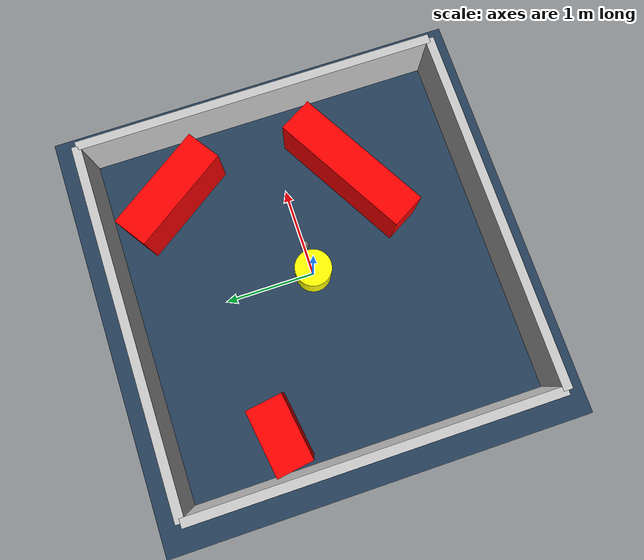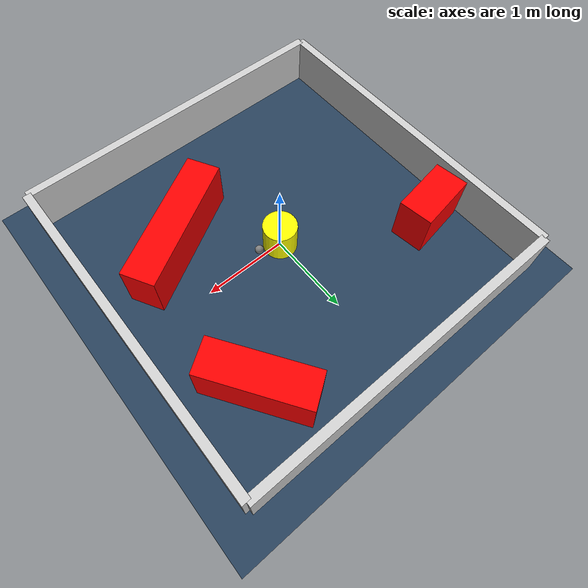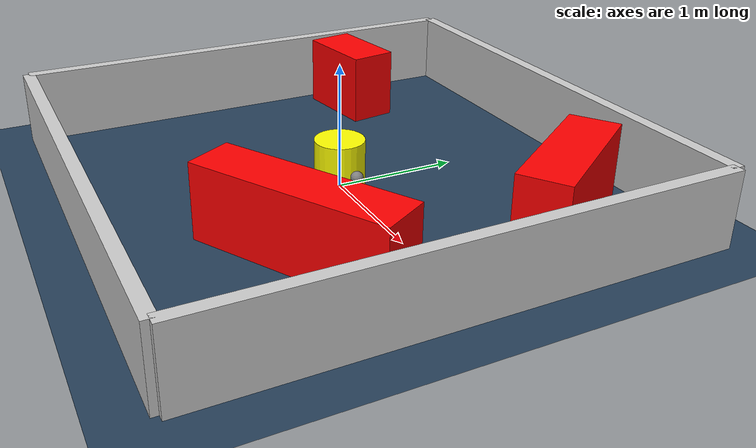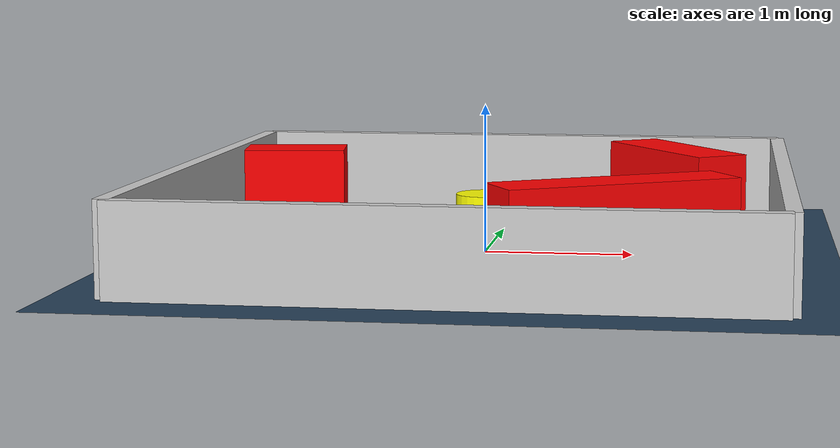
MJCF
<?xml version="1.0" ?>
<mujoco model="generated_environment">
  <option timestep="0.01" integrator="RK4" cone="elliptic"/>
  <default>
    <geom density="1"/>
  </default>
  <asset>
    <texture builtin="gradient" height="3072" rgb1="0.3 0.5 0.7" rgb2="0 0 0" type="skybox" width="512"/>
    <texture builtin="checker" height="300" mark="edge" markrgb="0.8 0.8 0.8" name="groundplane" rgb1="0.2 0.3 0.4" rgb2="0.1 0.2 0.3" type="2d" width="300"/>
    <material name="groundplane" reflectance="0.2" texrepeat="5 5" texture="groundplane" texuniform="true"/>
    <material name="robot" rgba="0.0 1.0 0.0 1"/>
  </asset>
  <worldbody>
    <light dir="0 0 -1" directional="true" pos="0 0 1.5"/>
    <geom condim="4" friction="1.0 0.005 0.001" material="groundplane" name="floor" size="0 0 0.05" type="plane"/>
    <body name="walls">
      <geom name="wall_1" condim="4" pos="-2.0 0.0 0.3" rgba="0.800000011920929 0.800000011920929 0.800000011920929 1.0" size="0.05 2.0 0.3" type="box"/>
      <geom name="wall_2" condim="4" pos="2.0 0.0 0.3" rgba="0.800000011920929 0.800000011920929 0.800000011920929 1.0" size="0.05 2.0 0.3" type="box"/>
      <geom name="wall_3" condim="4" pos="0.0 -2.0 0.3" rgba="0.800000011920929 0.800000011920929 0.800000011920929 1.0" size="2.0 0.05 0.3" type="box"/>
      <geom name="wall_4" condim="4" pos="0.0 2.0 0.3" rgba="0.800000011920929 0.800000011920929 0.800000011920929 1.0" size="2.0 0.05 0.3" type="box"/>
    </body>
    <body name="robot">
      <joint name="joint_x" type="slide" pos="0 0 0" axis="1 0 0"/>
      <joint name="joint_y" type="slide" pos="0 0 0" axis="0 1 0"/>
      <geom name="robot" type="sphere" pos="0.3 0.0 0.2" size="0.05" mass="5." friction="1.0 0.005 0.0001" condim="4" rgba="0.5 0.5 0.5 1.0"/>
      <site name="sensor_ball"/>
    </body>
    <body name="obstacle_movable_1">
      <geom name="obstacle_movable_1" condim="4" pos="0.0 0.0 0.2" euler="0 0 0.0" friction="1.0 0.005 0.001" rgba="1.0 1.0 0.0 1.0" size="0.2 0.2 0.0" type="cylinder" mass="0.1"/>
      <joint type="free"/>
    </body>
    <body name="obstacle_2_static">
      <geom name="obstacle_2_static" condim="4" pos="-1.5195017525135537 0.8523007677934371 0.3" euler="0 0 8.538850151342183" friction="1.0 0.005 0.001" rgba="1 0 0 1" size="0.36046707092953684 0.2 0.3" type="box"/>
    </body>
    <body name="obstacle_3_static">
      <geom name="obstacle_3_static" condim="4" pos="1.2512553366694377 1.2041330185024315 0.3" euler="0 0 304.183255463539" friction="1.0 0.005 0.001" rgba="1 0 0 1" size="0.6063730135889416 0.2 0.3" type="box"/>
    </body>
    <body name="obstacle_4_static">
      <geom name="obstacle_4_static" condim="4" pos="0.9175056007601501 -0.7244789730988175 0.3" euler="0 0 209.7269166004834" friction="1.0 0.005 0.001" rgba="1 0 0 1" size="0.8032445256564762 0.2 0.3" type="box"/>
    </body>
  </worldbody>
  <actuator>
    <motor name="actuator_x" joint="joint_x" gear="1" ctrlrange="-1 1"/>
    <motor name="actuator_y" joint="joint_y" gear="1" ctrlrange="-1 1"/>
  </actuator>
</mujoco>
